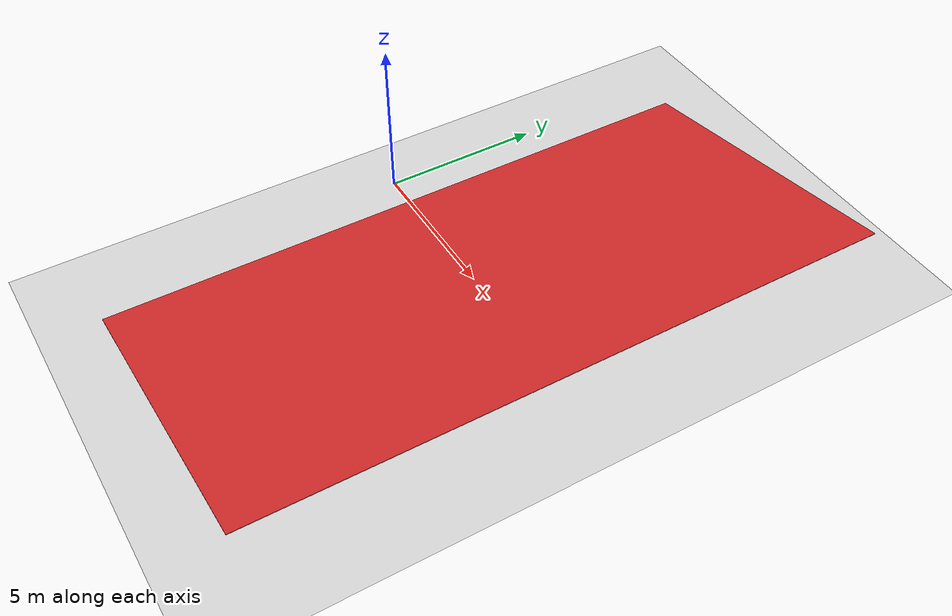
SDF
<?xml version="1.0" ?>
<sdf version="1.6">
<!--
Gazebo contact sensor example

Run the following to print out contacts,

  gz topic -e -t "/contact_example"
-->

  <world name="contact_sensor">
    <plugin
      filename="gz-sim-physics-system"
      name="gz::sim::systems::Physics">
    </plugin>
    <plugin
      filename="gz-sim-contact-system"
      name="gz::sim::systems::Contact">
    </plugin>
    <plugin
      filename="gz-sim-user-commands-system"
      name="gz::sim::systems::UserCommands">
    </plugin>
    <plugin
      filename="gz-sim-scene-broadcaster-system"
      name="gz::sim::systems::SceneBroadcaster">
    </plugin>

    <plugin
      filename="gz-sim-imu-system"
      name="gz::sim::systems::Imu">
    </plugin>
    <plugin
      filename="gz-sim-sensors-system"
      name="gz::sim::systems::Sensors">
        <render_engine>ogre2</render_engine>
    </plugin>

    <scene>
    </scene>

    <light type="directional" name="sun">
      <cast_shadows>true</cast_shadows>
      <pose>0 0 10 0 0 0</pose>
      <diffuse>1 1 1 1</diffuse>
      <specular>0.5 0.5 0.5 1</specular>
      <attenuation>
        <range>1000</range>
        <constant>0.9</constant>
        <linear>0.01</linear>
        <quadratic>0.001</quadratic>
      </attenuation>
      <direction>-0.5 0.1 -0.9</direction>
    </light>

    <model name="ground_plane">
      <static>true</static>
      <pose>0 0 0.0 0 0 0</pose>
      <link name="link">
        <collision name="collision">
          <geometry>
            <plane>
              <normal>0 0 1</normal>
              <size>100 100</size>
            </plane>
          </geometry>
        </collision>
        <visual name="visual">
          <geometry>
            <plane>
              <normal>0 0 1</normal>
              <size>100 100</size>
            </plane>
          </geometry>
          <material>
            <ambient>0.8 0.8 0.8 1</ambient>
            <diffuse>0.8 0.8 0.8 1</diffuse>
            <specular>0.8 0.8 0.8 1</specular>
          </material>
        </visual>
      </link>
    </model>

    <model name='tilted_floor'>
      <static>1</static>
      <pose frame=''> 1 0 0 0 -0.1745 0</pose>  <!-- set P to change tilt value (-rad) -->
      <link name='link'>
        <pose frame=''> 5 0 -0.01 0 -0 0</pose>
        <collision name='collision'>
          <geometry>
            <box>
              <size>10 20 0.02</size>
            </box>
          </geometry>
          <surface>
            <contact>
              <collide_bitmask>65535</collide_bitmask>
              <ode/>
            </contact>
            <friction>
              <ode>
                <mu>100</mu>
                <mu2>50</mu2>
              </ode>
              <torsional>
                <ode/>
              </torsional>
            </friction>
            <bounce/>
          </surface>
          <max_contacts>10</max_contacts>
        </collision>
        <visual name='visual'>
          <cast_shadows>1</cast_shadows>
          <geometry>
            <box>
              <size>10 20 0.02</size>
            </box>
          </geometry>
          <material>
            <script>
              <uri>file://media/materials/scripts/gazebo.material</uri>
              <name>Gazebo/Red</name>
            </script>
          </material>
          <transparency>0.1</transparency>
        </visual>
        <self_collide>0</self_collide>
        <enable_wind>0</enable_wind>
        <kinematic>0</kinematic>
      </link>
    </model>

  </world>
</sdf>
